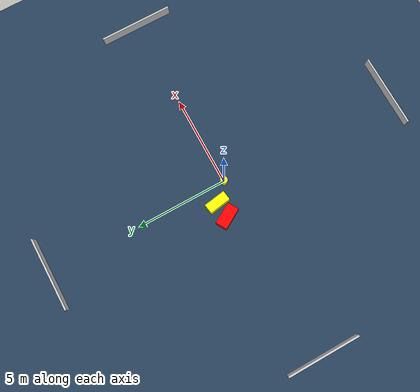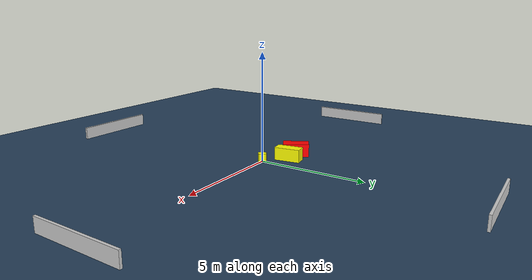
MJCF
<?xml version="1.0" ?>
<mujoco model="generated_environment">
  <option timestep="0.01" integrator="RK4" cone="elliptic"/>
  <default>
    <geom density="1"/>
  </default>
  <asset>
    <texture builtin="gradient" height="3072" name="skybox" rgb1="0.3 0.5 0.7" rgb2="0 0 0" type="skybox" width="512"/>
    <texture builtin="checker" height="300" name="groundplane" rgb1="0.2 0.3 0.4" rgb2="0.1 0.2 0.3" type="2d" width="300"/>
    <material name="groundplane" reflectance="0.2" texrepeat="5 5" texture="groundplane"/>
  </asset>
  <worldbody>
    <light dir="0 0 -1" directional="true" pos="0 0 1.5"/>
    <geom condim="3" friction="0.5 0.005 0.001" material="groundplane" name="floor" pos="0 0 0" size="0 0 0.05" type="plane"/>
    <body name="walls">
      <geom name="wall_1" condim="4" pos="-10.0 0.0 0.3" rgba="0.800000011920929 0.800000011920929 0.800000011920929 1.0" size="0.05 2.0 0.3" type="box"/>
      <geom name="wall_2" condim="4" pos="10.0 0.0 0.3" rgba="0.800000011920929 0.800000011920929 0.800000011920929 1.0" size="0.05 2.0 0.3" type="box"/>
      <geom name="wall_3" condim="4" pos="0.0 -10.0 0.3" rgba="0.800000011920929 0.800000011920929 0.800000011920929 1.0" size="2.0 0.05 0.3" type="box"/>
      <geom name="wall_4" condim="4" pos="0.0 10.0 0.3" rgba="0.800000011920929 0.800000011920929 0.800000011920929 1.0" size="2.0 0.05 0.3" type="box"/>
    </body>
    <body name="robot">
      <joint name="joint_x" type="slide" pos="0 0 0" axis="1 0 0"/>
      <joint name="joint_y" type="slide" pos="0 0 0" axis="0 1 0"/>
      <geom name="robot" type="cylinder" pos="0.0 0.0 0.2" size="0.2 0.2 0.0" mass="5.0" friction="1.0 0.005 0.0001" condim="4" rgba="1.0 1.0 0.0 1.0"/>
    </body>
    <body name="obstacle_1_movable">
      <geom name="obstacle_1_movable" condim="4" pos="-0.8890761218782366 0.8837214851124534 0.3" euler="0 0 278.9285495975287" friction="0.0 0.005 0.001" rgba="1.0 1.0 0.0 1.0" size="0.6019133976135214 0.26626861666445095 0.3" type="box" mass="0.1"/>
      <joint type="free"/>
    </body>
    <body name="obstacle_2_static">
      <geom name="obstacle_2_static" condim="4" pos="-1.7482482396992036 0.7799474444118418 0.3" euler="0 0 300.38360425018703" friction="0.0 0.005 0.001" rgba="1.0 0.0 0.0 1.0" size="0.6077013992867337 0.3219736509773095 0.3" type="box"/>
    </body>
  </worldbody>
  <actuator>
    <motor name="actuator_x" joint="joint_x" gear="1" ctrlrange="-1 1"/>
    <motor name="actuator_y" joint="joint_y" gear="1" ctrlrange="-1 1"/>
  </actuator>
</mujoco>
